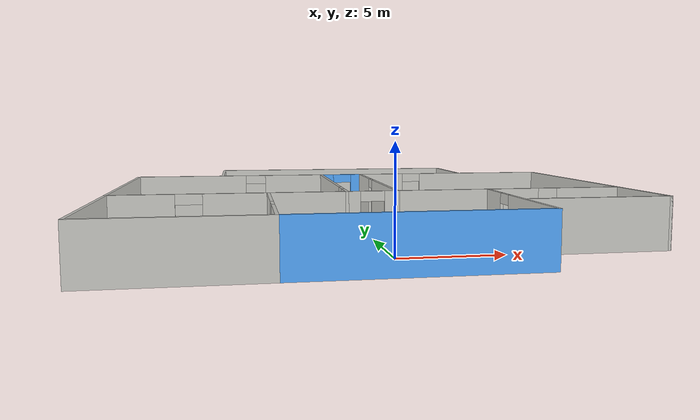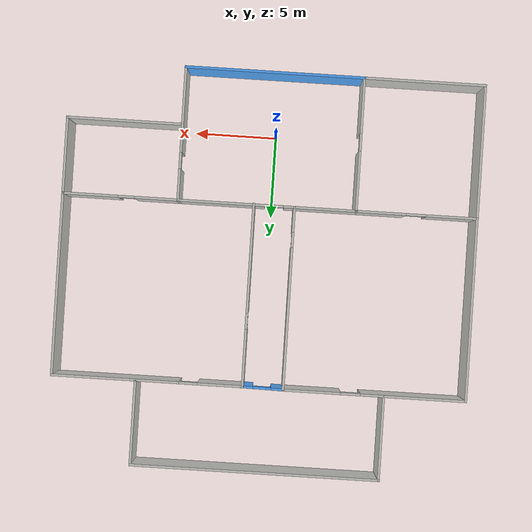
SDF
<?xml version='1.0'?>
<sdf version='1.6'>
  <model name='House'>
    <pose frame=''>0.090577 8.4467 0 0 -0 0</pose>
    <link name='Wall_0'>
      <collision name='Wall_0_Collision'>
        <geometry>
          <box>
            <size>11 0.15 2.5</size>
          </box>
        </geometry>
        <pose frame=''>0 0 1.25 0 -0 0</pose>
      </collision>
      <visual name='Wall_0_Visual'>
        <pose frame=''>0 0 1.25 0 -0 0</pose>
        <geometry>
          <box>
            <size>11 0.15 2.5</size>
          </box>
        </geometry>
        <material>
          <script>
            <uri>file://media/materials/scripts/gazebo.material</uri>
            <name>Gazebo/Grey</name>
          </script>
          <ambient>0.333333 0.666667 1 1</ambient>
        </material>
        <meta>
          <layer>0</layer>
        </meta>
      </visual>
      <pose frame=''>0.183984 -12.1574 0 0 -0 0</pose>
    </link>
    <link name='Wall_1'>
      <pose frame=''>5.60898 -8.10739 0 0 -0 1.5708</pose>
      <visual name='Wall_1_Visual_0'>
        <pose frame=''>-1.48929 0 1.25 0 -0 0</pose>
        <geometry>
          <box>
            <size>5.27142 0.15 2.5</size>
          </box>
        </geometry>
        <material>
          <script>
            <uri>file://media/materials/scripts/gazebo.material</uri>
            <name>Gazebo/CeilingTiled</name>
          </script>
          <ambient>0.333333 0.666667 1 1</ambient>
        </material>
        <meta>
          <layer>0</layer>
        </meta>
      </visual>
      <collision name='Wall_1_Collision_0'>
        <geometry>
          <box>
            <size>5.27142 0.15 2.5</size>
          </box>
        </geometry>
        <pose frame=''>-1.48929 0 1.25 0 -0 0</pose>
      </collision>
      <visual name='Wall_1_Visual_1'>
        <pose frame=''>3.13789 0 1.25 0 -0 0</pose>
        <geometry>
          <box>
            <size>1.97423 0.15 2.5</size>
          </box>
        </geometry>
        <material>
          <script>
            <uri>file://media/materials/scripts/gazebo.material</uri>
            <name>Gazebo/CeilingTiled</name>
          </script>
          <ambient>0.333333 0.666667 1 1</ambient>
        </material>
        <meta>
          <layer>0</layer>
        </meta>
      </visual>
      <collision name='Wall_1_Collision_1'>
        <geometry>
          <box>
            <size>1.97423 0.15 2.5</size>
          </box>
        </geometry>
        <pose frame=''>3.13789 0 1.25 0 -0 0</pose>
      </collision>
      <visual name='Wall_1_Visual_2'>
        <pose frame=''>1.6486 0 2.25 0 -0 0</pose>
        <geometry>
          <box>
            <size>1.00435 0.15 0.5</size>
          </box>
        </geometry>
        <material>
          <script>
            <uri>file://media/materials/scripts/gazebo.material</uri>
            <name>Gazebo/CeilingTiled</name>
          </script>
          <ambient>0.333333 0.666667 1 1</ambient>
        </material>
        <meta>
          <layer>0</layer>
        </meta>
      </visual>
      <collision name='Wall_1_Collision_2'>
        <geometry>
          <box>
            <size>1.00435 0.15 0.5</size>
          </box>
        </geometry>
        <pose frame=''>1.6486 0 2.25 0 -0 0</pose>
      </collision>
    </link>
    <link name='Wall_10'>
      <pose frame=''>9.09999 -4.05751 0 0 -0 3.14156</pose>
      <visual name='Wall_10_Visual_0'>
        <pose frame=''>-1.83954 0 1.25 0 -0 0</pose>
        <geometry>
          <box>
            <size>3.45292 0.15 2.5</size>
          </box>
        </geometry>
        <material>
          <script>
            <uri>file://media/materials/scripts/gazebo.material</uri>
            <name>Gazebo/CeilingTiled</name>
          </script>
          <ambient>0.333333 0.666667 1 1</ambient>
        </material>
        <meta>
          <layer>0</layer>
        </meta>
      </visual>
      <collision name='Wall_10_Collision_0'>
        <geometry>
          <box>
            <size>3.45292 0.15 2.5</size>
          </box>
        </geometry>
        <pose frame=''>-1.83954 0 1.25 0 -0 0</pose>
      </collision>
      <visual name='Wall_10_Visual_1'>
        <pose frame=''>2.22019 0 1.25 0 -0 0</pose>
        <geometry>
          <box>
            <size>2.69164 0.15 2.5</size>
          </box>
        </geometry>
        <material>
          <script>
            <uri>file://media/materials/scripts/gazebo.material</uri>
            <name>Gazebo/CeilingTiled</name>
          </script>
          <ambient>0.333333 0.666667 1 1</ambient>
        </material>
        <meta>
          <layer>0</layer>
        </meta>
      </visual>
      <collision name='Wall_10_Collision_1'>
        <geometry>
          <box>
            <size>2.69164 0.15 2.5</size>
          </box>
        </geometry>
        <pose frame=''>2.22019 0 1.25 0 -0 0</pose>
      </collision>
      <visual name='Wall_10_Visual_2'>
        <pose frame=''>0.380644 0 2.25 0 -0 0</pose>
        <geometry>
          <box>
            <size>0.98745 0.15 0.5</size>
          </box>
        </geometry>
        <material>
          <script>
            <uri>file://media/materials/scripts/gazebo.material</uri>
            <name>Gazebo/CeilingTiled</name>
          </script>
          <ambient>0.333333 0.666667 1 1</ambient>
        </material>
        <meta>
          <layer>0</layer>
        </meta>
      </visual>
      <collision name='Wall_10_Collision_2'>
        <geometry>
          <box>
            <size>0.98745 0.15 0.5</size>
          </box>
        </geometry>
        <pose frame=''>0.380644 0 2.25 0 -0 0</pose>
      </collision>
    </link>
    <link name='Wall_12'>
      <collision name='Wall_12_Collision'>
        <geometry>
          <box>
            <size>11.25 0.15 2.5</size>
          </box>
        </geometry>
        <pose frame=''>0 0 1.25 0 -0 0</pose>
      </collision>
      <visual name='Wall_12_Visual'>
        <pose frame=''>0 0 1.25 0 -0 0</pose>
        <geometry>
          <box>
            <size>11.25 0.15 2.5</size>
          </box>
        </geometry>
        <material>
          <script>
            <uri>file://media/materials/scripts/gazebo.material</uri>
            <name>Gazebo/CeilingTiled</name>
          </script>
          <ambient>0.333333 0.666667 1 1</ambient>
        </material>
        <meta>
          <layer>0</layer>
        </meta>
      </visual>
      <pose frame=''>-12.591 1.49261 0 0 -0 1.5708</pose>
    </link>
    <link name='Wall_13'>
      <pose frame=''>-7.04102 7.04261 0 0 -0 0</pose>
      <visual name='Wall_13_Visual_0'>
        <pose frame=''>-2.39161 0 1.25 0 -0 0</pose>
        <geometry>
          <box>
            <size>6.46678 0.15 2.5</size>
          </box>
        </geometry>
        <material>
          <script>
            <uri>file://media/materials/scripts/gazebo.material</uri>
            <name>Gazebo/CeilingTiled</name>
          </script>
          <ambient>0.333333 0.666667 1 1</ambient>
        </material>
        <meta>
          <layer>0</layer>
        </meta>
      </visual>
      <collision name='Wall_13_Collision_0'>
        <geometry>
          <box>
            <size>6.46678 0.15 2.5</size>
          </box>
        </geometry>
        <pose frame=''>-2.39161 0 1.25 0 -0 0</pose>
      </collision>
      <visual name='Wall_13_Visual_1'>
        <pose frame=''>3.82706 0 1.25 0 -0 0</pose>
        <geometry>
          <box>
            <size>3.59588 0.15 2.5</size>
          </box>
        </geometry>
        <material>
          <script>
            <uri>file://media/materials/scripts/gazebo.material</uri>
            <name>Gazebo/CeilingTiled</name>
          </script>
          <ambient>0.333333 0.666667 1 1</ambient>
        </material>
        <meta>
          <layer>0</layer>
        </meta>
      </visual>
      <collision name='Wall_13_Collision_1'>
        <geometry>
          <box>
            <size>3.59588 0.15 2.5</size>
          </box>
        </geometry>
        <pose frame=''>3.82706 0 1.25 0 -0 0</pose>
      </collision>
      <visual name='Wall_13_Visual_2'>
        <pose frame=''>1.43545 0 2.25 0 -0 0</pose>
        <geometry>
          <box>
            <size>1.18734 0.15 0.5</size>
          </box>
        </geometry>
        <material>
          <script>
            <uri>file://media/materials/scripts/gazebo.material</uri>
            <name>Gazebo/CeilingTiled</name>
          </script>
          <ambient>0.333333 0.666667 1 1</ambient>
        </material>
        <meta>
          <layer>0</layer>
        </meta>
      </visual>
      <collision name='Wall_13_Collision_2'>
        <geometry>
          <box>
            <size>1.18734 0.15 0.5</size>
          </box>
        </geometry>
        <pose frame=''>1.43545 0 2.25 0 -0 0</pose>
      </collision>
    </link>
    <link name='Wall_14'>
      <pose frame=''>-1.49102 1.49261 0 0 0 -1.5708</pose>
      <visual name='Wall_14_Visual_0'>
        <pose frame=''>-1.25571 0 1.25 0 -0 0</pose>
        <geometry>
          <box>
            <size>8.73859 0.15 2.5</size>
          </box>
        </geometry>
        <material>
          <script>
            <uri>file://media/materials/scripts/gazebo.material</uri>
            <name>Gazebo/CeilingTiled</name>
          </script>
          <ambient>0.333333 0.666667 1 1</ambient>
        </material>
        <meta>
          <layer>0</layer>
        </meta>
      </visual>
      <collision name='Wall_14_Collision_0'>
        <geometry>
          <box>
            <size>8.73859 0.15 2.5</size>
          </box>
        </geometry>
        <pose frame=''>-1.25571 0 1.25 0 -0 0</pose>
      </collision>
      <visual name='Wall_14_Visual_1'>
        <pose frame=''>4.83252 0 1.25 0 -0 0</pose>
        <geometry>
          <box>
            <size>1.58496 0.15 2.5</size>
          </box>
        </geometry>
        <material>
          <script>
            <uri>file://media/materials/scripts/gazebo.material</uri>
            <name>Gazebo/CeilingTiled</name>
          </script>
          <ambient>0.333333 0.666667 1 1</ambient>
        </material>
        <meta>
          <layer>0</layer>
        </meta>
      </visual>
      <collision name='Wall_14_Collision_1'>
        <geometry>
          <box>
            <size>1.58496 0.15 2.5</size>
          </box>
        </geometry>
        <pose frame=''>4.83252 0 1.25 0 -0 0</pose>
      </collision>
      <visual name='Wall_14_Visual_2'>
        <pose frame=''>3.57681 0 2.25 0 -0 0</pose>
        <geometry>
          <box>
            <size>0.92645 0.15 0.5</size>
          </box>
        </geometry>
        <material>
          <script>
            <uri>file://media/materials/scripts/gazebo.material</uri>
            <name>Gazebo/CeilingTiled</name>
          </script>
          <ambient>0.333333 0.666667 1 1</ambient>
        </material>
        <meta>
          <layer>0</layer>
        </meta>
      </visual>
      <collision name='Wall_14_Collision_2'>
        <geometry>
          <box>
            <size>0.92645 0.15 0.5</size>
          </box>
        </geometry>
        <pose frame=''>3.57681 0 2.25 0 -0 0</pose>
      </collision>
    </link>
    <link name='Wall_16'>
      <pose frame=''>0.987607 1.45224 0 0 -0 1.5708</pose>
      <visual name='Wall_16_Visual_0'>
        <pose frame=''>-2.27586 0 1.25 0 -0 0</pose>
        <geometry>
          <box>
            <size>6.69828 0.15 2.5</size>
          </box>
        </geometry>
        <material>
          <script>
            <uri>file://media/materials/scripts/gazebo.material</uri>
            <name>Gazebo/CeilingTiled</name>
          </script>
          <ambient>0.333333 0.666667 1 1</ambient>
        </material>
        <meta>
          <layer>0</layer>
        </meta>
      </visual>
      <collision name='Wall_16_Collision_0'>
        <geometry>
          <box>
            <size>6.69828 0.15 2.5</size>
          </box>
        </geometry>
        <pose frame=''>-2.27586 0 1.25 0 -0 0</pose>
      </collision>
      <visual name='Wall_16_Visual_1'>
        <pose frame=''>3.84262 0 1.25 0 -0 0</pose>
        <geometry>
          <box>
            <size>3.56477 0.15 2.5</size>
          </box>
        </geometry>
        <material>
          <script>
            <uri>file://media/materials/scripts/gazebo.material</uri>
            <name>Gazebo/CeilingTiled</name>
          </script>
          <ambient>0.333333 0.666667 1 1</ambient>
        </material>
        <meta>
          <layer>0</layer>
        </meta>
      </visual>
      <collision name='Wall_16_Collision_1'>
        <geometry>
          <box>
            <size>3.56477 0.15 2.5</size>
          </box>
        </geometry>
        <pose frame=''>3.84262 0 1.25 0 -0 0</pose>
      </collision>
      <visual name='Wall_16_Visual_2'>
        <pose frame=''>1.56675 0 2.25 0 -0 0</pose>
        <geometry>
          <box>
            <size>0.986957 0.15 0.5</size>
          </box>
        </geometry>
        <material>
          <script>
            <uri>file://media/materials/scripts/gazebo.material</uri>
            <name>Gazebo/CeilingTiled</name>
          </script>
          <ambient>0.333333 0.666667 1 1</ambient>
        </material>
        <meta>
          <layer>0</layer>
        </meta>
      </visual>
      <collision name='Wall_16_Collision_2'>
        <geometry>
          <box>
            <size>0.986957 0.15 0.5</size>
          </box>
        </geometry>
        <pose frame=''>1.56675 0 2.25 0 -0 0</pose>
      </collision>
    </link>
    <link name='Wall_17'>
      <pose frame=''>6.78761 7.00224 0 0 -0 0</pose>
      <visual name='Wall_17_Visual_0'>
        <pose frame=''>-4.46605 0 1.25 0 -0 0</pose>
        <geometry>
          <box>
            <size>2.81789 0.15 2.5</size>
          </box>
        </geometry>
        <material>
          <script>
            <uri>file://media/materials/scripts/gazebo.material</uri>
            <name>Gazebo/CeilingTiled</name>
          </script>
          <ambient>0.333333 0.666667 1 1</ambient>
        </material>
        <meta>
          <layer>0</layer>
        </meta>
      </visual>
      <collision name='Wall_17_Collision_0'>
        <geometry>
          <box>
            <size>2.81789 0.15 2.5</size>
          </box>
        </geometry>
        <pose frame=''>-4.46605 0 1.25 0 -0 0</pose>
      </collision>
      <visual name='Wall_17_Visual_1'>
        <pose frame=''>1.96859 0 1.25 0 -0 0</pose>
        <geometry>
          <box>
            <size>7.81283 0.15 2.5</size>
          </box>
        </geometry>
        <material>
          <script>
            <uri>file://media/materials/scripts/gazebo.material</uri>
            <name>Gazebo/CeilingTiled</name>
          </script>
          <ambient>0.333333 0.666667 1 1</ambient>
        </material>
        <meta>
          <layer>0</layer>
        </meta>
      </visual>
      <collision name='Wall_17_Collision_1'>
        <geometry>
          <box>
            <size>7.81283 0.15 2.5</size>
          </box>
        </geometry>
        <pose frame=''>1.96859 0 1.25 0 -0 0</pose>
      </collision>
      <visual name='Wall_17_Visual_2'>
        <pose frame=''>-2.49747 0 2.25 0 -0 0</pose>
        <geometry>
          <box>
            <size>1.11928 0.15 0.5</size>
          </box>
        </geometry>
        <material>
          <script>
            <uri>file://media/materials/scripts/gazebo.material</uri>
            <name>Gazebo/CeilingTiled</name>
          </script>
          <ambient>0.333333 0.666667 1 1</ambient>
        </material>
        <meta>
          <layer>0</layer>
        </meta>
      </visual>
      <collision name='Wall_17_Collision_2'>
        <geometry>
          <box>
            <size>1.11928 0.15 0.5</size>
          </box>
        </geometry>
        <pose frame=''>-2.49747 0 2.25 0 -0 0</pose>
      </collision>
    </link>
    <link name='Wall_18'>
      <collision name='Wall_18_Collision'>
        <geometry>
          <box>
            <size>11.2099 0.15 2.5</size>
          </box>
        </geometry>
        <pose frame=''>0 0 1.25 0 -0 0</pose>
      </collision>
      <visual name='Wall_18_Visual'>
        <pose frame=''>0 0 1.25 0 -0 0</pose>
        <geometry>
          <box>
            <size>11.2099 0.15 2.5</size>
          </box>
        </geometry>
        <material>
          <script>
            <uri>file://media/materials/scripts/gazebo.material</uri>
            <name>Gazebo/CeilingTiled</name>
          </script>
          <ambient>0.333333 0.666667 1 1</ambient>
        </material>
        <meta>
          <layer>0</layer>
        </meta>
      </visual>
      <pose frame=''>12.5893 1.47231 0 0 0 -1.57049</pose>
    </link>
    <link name='Wall_2'>
      <pose frame=''>0.183984 -4.05739 0 0 -0 3.14159</pose>
      <visual name='Wall_2_Visual_0'>
        <pose frame=''>-2.82644 0 1.25 0 -0 0</pose>
        <geometry>
          <box>
            <size>5.34713 0.15 2.5</size>
          </box>
        </geometry>
        <material>
          <script>
            <uri>file://media/materials/scripts/gazebo.material</uri>
            <name>Gazebo/CeilingTiled</name>
          </script>
          <ambient>0.333333 0.666667 1 1</ambient>
        </material>
        <meta>
          <layer>0</layer>
        </meta>
      </visual>
      <collision name='Wall_2_Collision_0'>
        <geometry>
          <box>
            <size>5.34713 0.15 2.5</size>
          </box>
        </geometry>
        <pose frame=''>-2.82644 0 1.25 0 -0 0</pose>
      </collision>
      <visual name='Wall_2_Visual_1'>
        <pose frame=''>3.26349 0 1.25 0 -0 0</pose>
        <geometry>
          <box>
            <size>4.47303 0.15 2.5</size>
          </box>
        </geometry>
        <material>
          <script>
            <uri>file://media/materials/scripts/gazebo.material</uri>
            <name>Gazebo/CeilingTiled</name>
          </script>
          <ambient>0.333333 0.666667 1 1</ambient>
        </material>
        <meta>
          <layer>0</layer>
        </meta>
      </visual>
      <collision name='Wall_2_Collision_1'>
        <geometry>
          <box>
            <size>4.47303 0.15 2.5</size>
          </box>
        </geometry>
        <pose frame=''>3.26349 0 1.25 0 -0 0</pose>
      </collision>
      <visual name='Wall_2_Visual_2'>
        <pose frame=''>0.437049 0 2.25 0 -0 0</pose>
        <geometry>
          <box>
            <size>1.17984 0.15 0.5</size>
          </box>
        </geometry>
        <material>
          <script>
            <uri>file://media/materials/scripts/gazebo.material</uri>
            <name>Gazebo/CeilingTiled</name>
          </script>
          <ambient>0.333333 0.666667 1 1</ambient>
        </material>
        <meta>
          <layer>0</layer>
        </meta>
      </visual>
      <collision name='Wall_2_Collision_2'>
        <geometry>
          <box>
            <size>1.17984 0.15 0.5</size>
          </box>
        </geometry>
        <pose frame=''>0.437049 0 2.25 0 -0 0</pose>
      </collision>
    </link>
    <link name='Wall_22'>
      <collision name='Wall_22_Collision'>
        <geometry>
          <box>
            <size>5.25 0.15 2.5</size>
          </box>
        </geometry>
        <pose frame=''>0 0 1.25 0 -0 0</pose>
      </collision>
      <visual name='Wall_22_Visual'>
        <pose frame=''>0 0 1.25 0 -0 0</pose>
        <geometry>
          <box>
            <size>5.25 0.15 2.5</size>
          </box>
        </geometry>
        <material>
          <script>
            <uri>file://media/materials/scripts/gazebo.material</uri>
            <name>Gazebo/CeilingTiled</name>
          </script>
          <ambient>0.333333 0.666667 1 1</ambient>
        </material>
        <meta>
          <layer>0</layer>
        </meta>
      </visual>
      <pose frame=''>-7.60935 9.60739 0 0 -0 1.5708</pose>
    </link>
    <link name='Wall_23'>
      <collision name='Wall_23_Collision'>
        <geometry>
          <box>
            <size>15.25 0.15 2.5</size>
          </box>
        </geometry>
        <pose frame=''>0 0 1.25 0 -0 0</pose>
      </collision>
      <visual name='Wall_23_Visual'>
        <pose frame=''>0 0 1.25 0 -0 0</pose>
        <geometry>
          <box>
            <size>15.25 0.15 2.5</size>
          </box>
        </geometry>
        <material>
          <script>
            <uri>file://media/materials/scripts/gazebo.material</uri>
            <name>Gazebo/CeilingTiled</name>
          </script>
          <ambient>0.333333 0.666667 1 1</ambient>
        </material>
        <meta>
          <layer>0</layer>
        </meta>
      </visual>
      <pose frame=''>-0.059347 12.1574 0 0 -0 0</pose>
    </link>
    <link name='Wall_24'>
      <collision name='Wall_24_Collision'>
        <geometry>
          <box>
            <size>5.25 0.15 2.5</size>
          </box>
        </geometry>
        <pose frame=''>0 0 1.25 0 -0 0</pose>
      </collision>
      <visual name='Wall_24_Visual'>
        <pose frame=''>0 0 1.25 0 -0 0</pose>
        <geometry>
          <box>
            <size>5.25 0.15 2.5</size>
          </box>
        </geometry>
        <material>
          <script>
            <uri>file://media/materials/scripts/gazebo.material</uri>
            <name>Gazebo/CeilingTiled</name>
          </script>
          <ambient>0.333333 0.666667 1 1</ambient>
        </material>
        <meta>
          <layer>0</layer>
        </meta>
      </visual>
      <pose frame=''>7.49065 9.60739 0 0 0 -1.5708</pose>
    </link>
    <link name='Wall_27'>
      <pose frame=''>-0.251705 7.02243 0 0 0 -0.016288</pose>
      <visual name='Wall_27_Visual_0'>
        <pose frame=''>-0.900445 0 1.25 0 -0 0</pose>
        <geometry>
          <box>
            <size>0.828061 0.15 2.5</size>
          </box>
        </geometry>
        <material>
          <script>
            <uri>file://media/materials/scripts/gazebo.material</uri>
            <name>Gazebo/Grey</name>
          </script>
          <ambient>0.333333 0.666667 1 1</ambient>
        </material>
        <meta>
          <layer>0</layer>
        </meta>
      </visual>
      <collision name='Wall_27_Collision_0'>
        <geometry>
          <box>
            <size>0.828061 0.15 2.5</size>
          </box>
        </geometry>
        <pose frame=''>-0.900445 0 1.25 0 -0 0</pose>
      </collision>
      <visual name='Wall_27_Visual_1'>
        <pose frame=''>0.962501 0 1.25 0 -0 0</pose>
        <geometry>
          <box>
            <size>0.70395 0.15 2.5</size>
          </box>
        </geometry>
        <material>
          <script>
            <uri>file://media/materials/scripts/gazebo.material</uri>
            <name>Gazebo/Grey</name>
          </script>
          <ambient>0.333333 0.666667 1 1</ambient>
        </material>
        <meta>
          <layer>0</layer>
        </meta>
      </visual>
      <collision name='Wall_27_Collision_1'>
        <geometry>
          <box>
            <size>0.70395 0.15 2.5</size>
          </box>
        </geometry>
        <pose frame=''>0.962501 0 1.25 0 -0 0</pose>
      </collision>
      <visual name='Wall_27_Visual_2'>
        <pose frame=''>0.062055 0 2.25 0 -0 0</pose>
        <geometry>
          <box>
            <size>1.09694 0.15 0.5</size>
          </box>
        </geometry>
        <material>
          <script>
            <uri>file://media/materials/scripts/gazebo.material</uri>
            <name>Gazebo/Grey</name>
          </script>
          <ambient>0.333333 0.666667 1 1</ambient>
        </material>
        <meta>
          <layer>0</layer>
        </meta>
      </visual>
      <collision name='Wall_27_Collision_2'>
        <geometry>
          <box>
            <size>1.09694 0.15 0.5</size>
          </box>
        </geometry>
        <pose frame=''>0.062055 0 2.25 0 -0 0</pose>
      </collision>
    </link>
    <link name='Wall_3'>
      <pose frame=''>-5.24102 -8.10739 0 0 0 -1.5708</pose>
      <visual name='Wall_3_Visual_0'>
        <pose frame=''>-2.25395 0 1.25 0 -0 0</pose>
        <geometry>
          <box>
            <size>3.74211 0.15 2.5</size>
          </box>
        </geometry>
        <material>
          <script>
            <uri>file://media/materials/scripts/gazebo.material</uri>
            <name>Gazebo/CeilingTiled</name>
          </script>
          <ambient>0.333333 0.666667 1 1</ambient>
        </material>
        <meta>
          <layer>0</layer>
        </meta>
      </visual>
      <collision name='Wall_3_Collision_0'>
        <geometry>
          <box>
            <size>3.74211 0.15 2.5</size>
          </box>
        </geometry>
        <pose frame=''>-2.25395 0 1.25 0 -0 0</pose>
      </collision>
      <visual name='Wall_3_Visual_1'>
        <pose frame=''>2.40105 0 1.25 0 -0 0</pose>
        <geometry>
          <box>
            <size>3.44789 0.15 2.5</size>
          </box>
        </geometry>
        <material>
          <script>
            <uri>file://media/materials/scripts/gazebo.material</uri>
            <name>Gazebo/CeilingTiled</name>
          </script>
          <ambient>0.333333 0.666667 1 1</ambient>
        </material>
        <meta>
          <layer>0</layer>
        </meta>
      </visual>
      <collision name='Wall_3_Collision_1'>
        <geometry>
          <box>
            <size>3.44789 0.15 2.5</size>
          </box>
        </geometry>
        <pose frame=''>2.40105 0 1.25 0 -0 0</pose>
      </collision>
      <visual name='Wall_3_Visual_2'>
        <pose frame=''>0.147107 0 2.25 0 -0 0</pose>
        <geometry>
          <box>
            <size>1.06 0.15 0.5</size>
          </box>
        </geometry>
        <material>
          <script>
            <uri>file://media/materials/scripts/gazebo.material</uri>
            <name>Gazebo/CeilingTiled</name>
          </script>
          <ambient>0.333333 0.666667 1 1</ambient>
        </material>
        <meta>
          <layer>0</layer>
        </meta>
      </visual>
      <collision name='Wall_3_Collision_2'>
        <geometry>
          <box>
            <size>1.06 0.15 0.5</size>
          </box>
        </geometry>
        <pose frame=''>0.147107 0 2.25 0 -0 0</pose>
      </collision>
    </link>
    <link name='Wall_4'>
      <collision name='Wall_4_Collision'>
        <geometry>
          <box>
            <size>7.5 0.15 2.5</size>
          </box>
        </geometry>
        <pose frame=''>0 0 1.25 0 -0 0</pose>
      </collision>
      <visual name='Wall_4_Visual'>
        <pose frame=''>0 0 1.25 0 -0 0</pose>
        <geometry>
          <box>
            <size>7.5 0.15 2.5</size>
          </box>
        </geometry>
        <material>
          <script>
            <uri>file://media/materials/scripts/gazebo.material</uri>
            <name>Gazebo/CeilingTiled</name>
          </script>
          <ambient>0.333333 0.666667 1 1</ambient>
        </material>
        <meta>
          <layer>0</layer>
        </meta>
      </visual>
      <pose frame=''>-8.91602 -12.1574 0 0 -0 3.14159</pose>
    </link>
    <link name='Wall_5'>
      <collision name='Wall_5_Collision'>
        <geometry>
          <box>
            <size>8.25 0.15 2.5</size>
          </box>
        </geometry>
        <pose frame=''>0 0 1.25 0 -0 0</pose>
      </collision>
      <visual name='Wall_5_Visual'>
        <pose frame=''>0 0 1.25 0 -0 0</pose>
        <geometry>
          <box>
            <size>8.25 0.15 2.5</size>
          </box>
        </geometry>
        <material>
          <script>
            <uri>file://media/materials/scripts/gazebo.material</uri>
            <name>Gazebo/CeilingTiled</name>
          </script>
          <ambient>0.333333 0.666667 1 1</ambient>
        </material>
        <meta>
          <layer>0</layer>
        </meta>
      </visual>
      <pose frame=''>-12.591 -8.10739 0 0 -0 1.5708</pose>
    </link>
    <link name='Wall_6'>
      <pose frame=''>-8.91602 -4.05739 0 0 -0 0</pose>
      <visual name='Wall_6_Visual_0'>
        <pose frame=''>-2.18039 0 1.25 0 -0 0</pose>
        <geometry>
          <box>
            <size>3.13922 0.15 2.5</size>
          </box>
        </geometry>
        <material>
          <script>
            <uri>file://media/materials/scripts/gazebo.material</uri>
            <name>Gazebo/CeilingTiled</name>
          </script>
          <ambient>0.333333 0.666667 1 1</ambient>
        </material>
        <meta>
          <layer>0</layer>
        </meta>
      </visual>
      <collision name='Wall_6_Collision_0'>
        <geometry>
          <box>
            <size>3.13922 0.15 2.5</size>
          </box>
        </geometry>
        <pose frame=''>-2.18039 0 1.25 0 -0 0</pose>
      </collision>
      <visual name='Wall_6_Visual_1'>
        <pose frame=''>2.19451 0 1.25 0 -0 0</pose>
        <geometry>
          <box>
            <size>3.11098 0.15 2.5</size>
          </box>
        </geometry>
        <material>
          <script>
            <uri>file://media/materials/scripts/gazebo.material</uri>
            <name>Gazebo/CeilingTiled</name>
          </script>
          <ambient>0.333333 0.666667 1 1</ambient>
        </material>
        <meta>
          <layer>0</layer>
        </meta>
      </visual>
      <collision name='Wall_6_Collision_1'>
        <geometry>
          <box>
            <size>3.11098 0.15 2.5</size>
          </box>
        </geometry>
        <pose frame=''>2.19451 0 1.25 0 -0 0</pose>
      </collision>
      <visual name='Wall_6_Visual_2'>
        <pose frame=''>0.014115 0 2.25 0 -0 0</pose>
        <geometry>
          <box>
            <size>1.2498 0.15 0.5</size>
          </box>
        </geometry>
        <material>
          <script>
            <uri>file://media/materials/scripts/gazebo.material</uri>
            <name>Gazebo/CeilingTiled</name>
          </script>
          <ambient>0.333333 0.666667 1 1</ambient>
        </material>
        <meta>
          <layer>0</layer>
        </meta>
      </visual>
      <collision name='Wall_6_Collision_2'>
        <geometry>
          <box>
            <size>1.2498 0.15 0.5</size>
          </box>
        </geometry>
        <pose frame=''>0.014115 0 2.25 0 -0 0</pose>
      </collision>
    </link>
    <link name='Wall_8'>
      <collision name='Wall_8_Collision'>
        <geometry>
          <box>
            <size>7 0.15 2.5</size>
          </box>
        </geometry>
        <pose frame=''>0 0 1.25 0 -0 0</pose>
      </collision>
      <visual name='Wall_8_Visual'>
        <pose frame=''>0 0 1.25 0 -0 0</pose>
        <geometry>
          <box>
            <size>7 0.15 2.5</size>
          </box>
        </geometry>
        <material>
          <script>
            <uri>file://media/materials/scripts/gazebo.material</uri>
            <name>Gazebo/CeilingTiled</name>
          </script>
          <ambient>0.333333 0.666667 1 1</ambient>
        </material>
        <meta>
          <layer>0</layer>
        </meta>
      </visual>
      <pose frame=''>9.16599 -8.65763 0 0 -0 0</pose>
    </link>
    <link name='Wall_9'>
      <collision name='Wall_9_Collision'>
        <geometry>
          <box>
            <size>4.75 0.15 2.5</size>
          </box>
        </geometry>
        <pose frame=''>0 0 1.25 0 -0 0</pose>
      </collision>
      <visual name='Wall_9_Visual'>
        <pose frame=''>0 0 1.25 0 -0 0</pose>
        <geometry>
          <box>
            <size>4.75 0.15 2.5</size>
          </box>
        </geometry>
        <material>
          <script>
            <uri>file://media/materials/scripts/gazebo.material</uri>
            <name>Gazebo/CeilingTiled</name>
          </script>
          <ambient>0.333333 0.666667 1 1</ambient>
        </material>
        <meta>
          <layer>0</layer>
        </meta>
      </visual>
      <pose frame=''>12.591 -6.35763 0 0 -0 1.5708</pose>
    </link>
    <static>1</static>
  </model>
</sdf>
